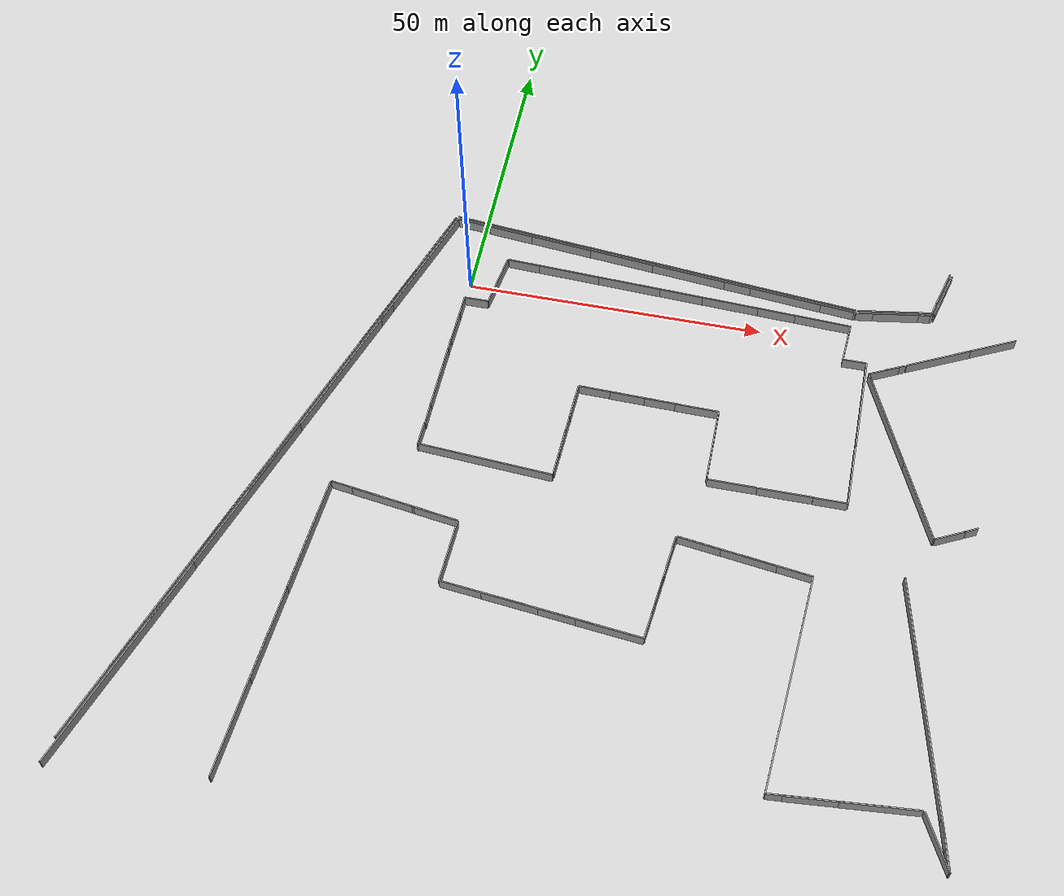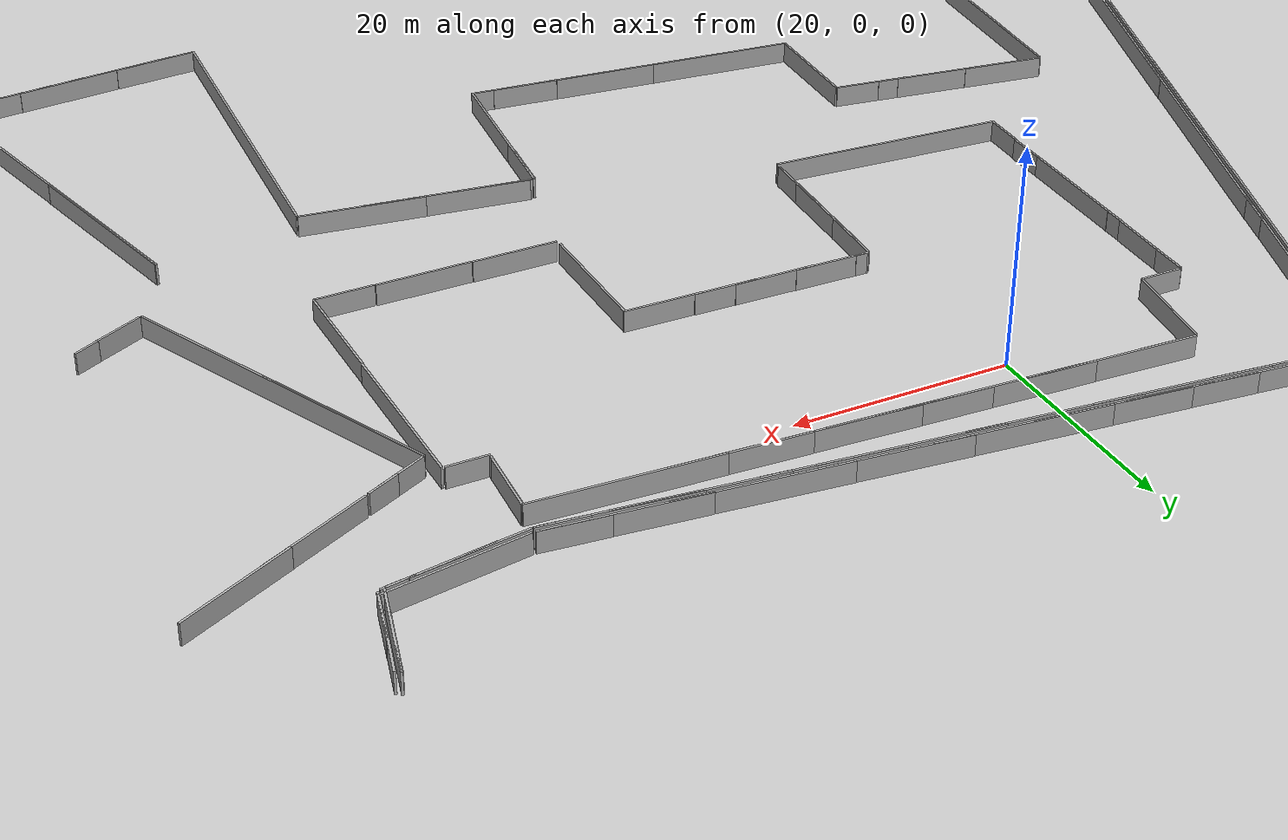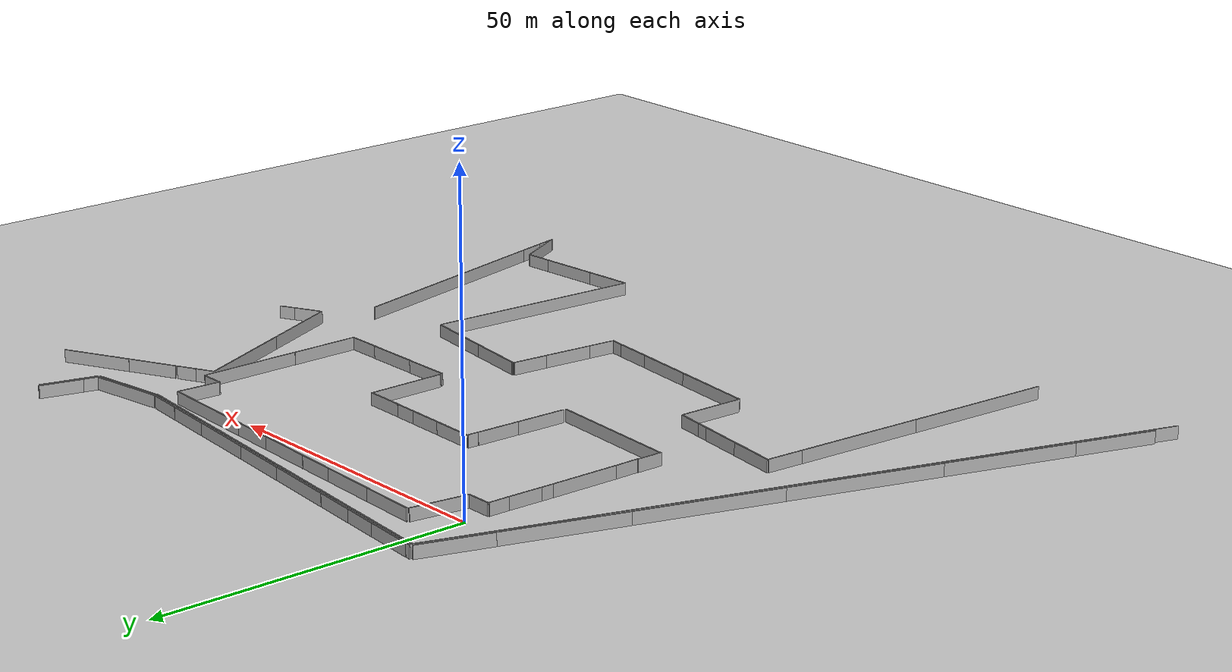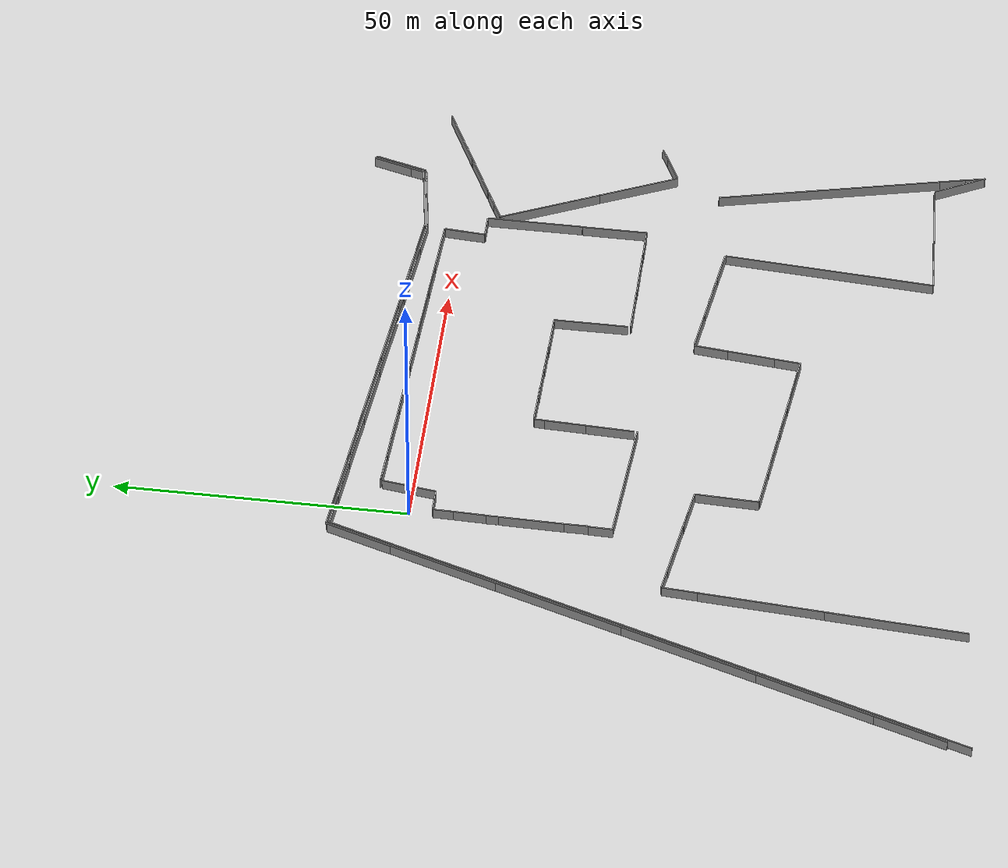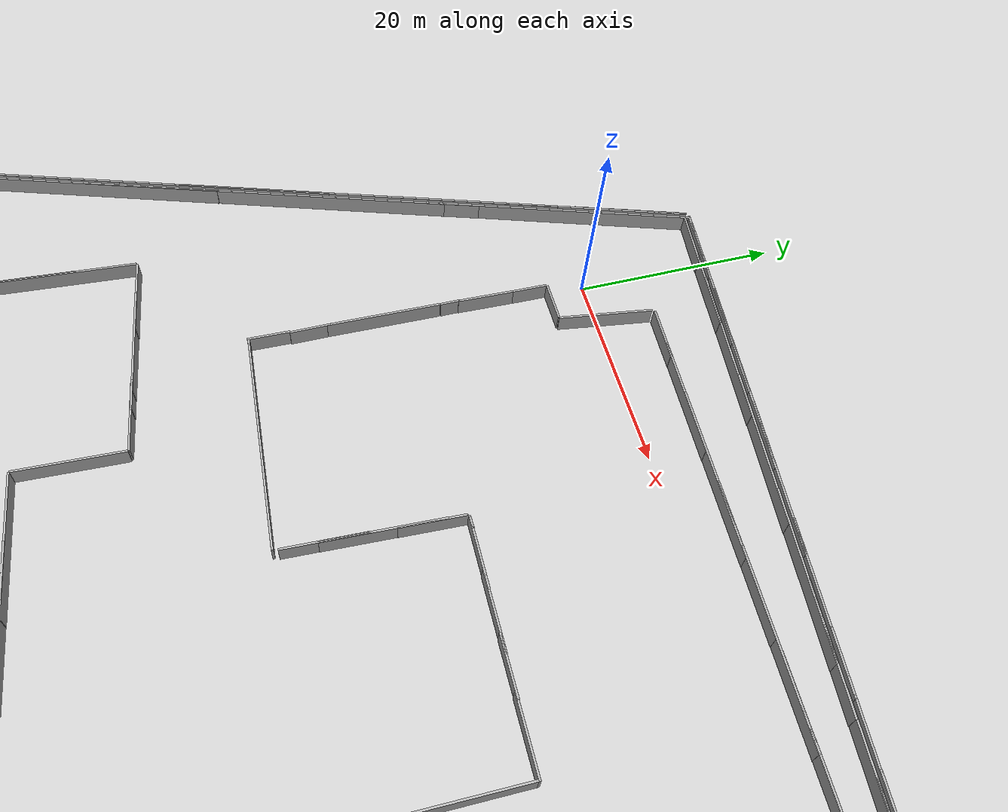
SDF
<sdf version="1.7">
 <world name="slam_world">
  <model name="ground_plane">
   <static>1</static>
   <link name="link">
    <collision name="collision">
     <geometry><plane><normal>0 0 1</normal><size>100 100</size></plane></geometry>
    </collision>
    <visual name="visual">
     <geometry><plane><normal>0 0 1</normal><size>100 100</size></plane></geometry>
     <material>
      <ambient>0.8 0.8 0.8 1</ambient>
      <diffuse>0.8 0.8 0.8 1</diffuse>
      <specular>0.8 0.8 0.8 1</specular>
     </material>
    </visual>
   </link>
  </model>
  <model name="wall_0">
   <static>1</static>
   <pose>-15.824 -19.025 1 0 -0 1.25765</pose>
   <link name="link">
    <collision name="collision"><geometry><box><size>40.4154 0.2 2</size></box></geometry></collision>
    <visual name="visual">
     <geometry><box><size>40.4154 0.2 2</size></box></geometry>
     <material><ambient>0.5 0.5 0.5 1</ambient><diffuse>0.7 0.7 0.7 1</diffuse></material>
    </visual>
   </link>
  </model>
  <model name="wall_1">
   <static>1</static>
   <pose>63.051 -64.125 1 0 -0 1.50137</pose>
   <link name="link">
    <collision name="collision"><geometry><box><size>36.0368 0.2 2</size></box></geometry></collision>
    <visual name="visual">
     <geometry><box><size>36.0368 0.2 2</size></box></geometry>
     <material><ambient>0.5 0.5 0.5 1</ambient><diffuse>0.7 0.7 0.7 1</diffuse></material>
    </visual>
   </link>
  </model>
  <model name="wall_6">
   <static>1</static>
   <pose>82.851 -64.275 1 0 0 -1.34478</pose>
   <link name="link">
    <collision name="collision"><geometry><box><size>42.8395 0.2 2</size></box></geometry></collision>
    <visual name="visual">
     <geometry><box><size>42.8395 0.2 2</size></box></geometry>
     <material><ambient>0.5 0.5 0.5 1</ambient><diffuse>0.7 0.7 0.7 1</diffuse></material>
    </visual>
   </link>
  </model>
  <model name="wall_8">
   <static>1</static>
   <pose>-26.474 -53.675 1 0 -0 1.25765</pose>
   <link name="link">
    <collision name="collision"><geometry><box><size>40.4154 0.2 2</size></box></geometry></collision>
    <visual name="visual">
     <geometry><box><size>40.4154 0.2 2</size></box></geometry>
     <material><ambient>0.5 0.5 0.5 1</ambient><diffuse>0.7 0.7 0.7 1</diffuse></material>
    </visual>
   </link>
  </model>
  <model name="wall_11">
   <static>1</static>
   <pose>-23.274 -42.125 1 0 -0 1.25765</pose>
   <link name="link">
    <collision name="collision"><geometry><box><size>40.4154 0.2 2</size></box></geometry></collision>
    <visual name="visual">
     <geometry><box><size>40.4154 0.2 2</size></box></geometry>
     <material><ambient>0.5 0.5 0.5 1</ambient><diffuse>0.7 0.7 0.7 1</diffuse></material>
    </visual>
   </link>
  </model>
  <model name="wall_13">
   <static>1</static>
   <pose>-18.774 -29.8 1 0 -0 1.25761</pose>
   <link name="link">
    <collision name="collision"><geometry><box><size>38.7868 0.2 2</size></box></geometry></collision>
    <visual name="visual">
     <geometry><box><size>38.7868 0.2 2</size></box></geometry>
     <material><ambient>0.5 0.5 0.5 1</ambient><diffuse>0.7 0.7 0.7 1</diffuse></material>
    </visual>
   </link>
  </model>
  <model name="wall_14">
   <static>1</static>
   <pose>68.151 -12.6 1 0 -0 1.5708</pose>
   <link name="link">
    <collision name="collision"><geometry><box><size>16.4 0.2 2</size></box></geometry></collision>
    <visual name="visual">
     <geometry><box><size>16.4 0.2 2</size></box></geometry>
     <material><ambient>0.5 0.5 0.5 1</ambient><diffuse>0.7 0.7 0.7 1</diffuse></material>
    </visual>
   </link>
  </model>
  <model name="wall_19">
   <static>1</static>
   <pose>-10.249 -1.775 1 0 -0 1.25668</pose>
   <link name="link">
    <collision name="collision"><geometry><box><size>31.0703 0.2 2</size></box></geometry></collision>
    <visual name="visual">
     <geometry><box><size>31.0703 0.2 2</size></box></geometry>
     <material><ambient>0.5 0.5 0.5 1</ambient><diffuse>0.7 0.7 0.7 1</diffuse></material>
    </visual>
   </link>
  </model>
  <model name="wall_20">
   <static>1</static>
   <pose>-34.974 -80 1 0 -0 1.25707</pose>
   <link name="link">
    <collision name="collision"><geometry><box><size>37.4268 0.2 2</size></box></geometry></collision>
    <visual name="visual">
     <geometry><box><size>37.4268 0.2 2</size></box></geometry>
     <material><ambient>0.5 0.5 0.5 1</ambient><diffuse>0.7 0.7 0.7 1</diffuse></material>
    </visual>
   </link>
  </model>
  <model name="wall_30">
   <static>1</static>
   <pose>75.276 -21.125 1 0 0 -1.15241</pose>
   <link name="link">
    <collision name="collision"><geometry><box><size>32.1205 0.2 2</size></box></geometry></collision>
    <visual name="visual">
     <geometry><box><size>32.1205 0.2 2</size></box></geometry>
     <material><ambient>0.5 0.5 0.5 1</ambient><diffuse>0.7 0.7 0.7 1</diffuse></material>
    </visual>
   </link>
  </model>
  <model name="wall_44">
   <static>1</static>
   <pose>-29.974 -62.9 1 0 -0 1.25761</pose>
   <link name="link">
    <collision name="collision"><geometry><box><size>38.7868 0.2 2</size></box></geometry></collision>
    <visual name="visual">
     <geometry><box><size>38.7868 0.2 2</size></box></geometry>
     <material><ambient>0.5 0.5 0.5 1</ambient><diffuse>0.7 0.7 0.7 1</diffuse></material>
    </visual>
   </link>
  </model>
  <model name="wall_58">
   <static>1</static>
   <pose>71.951 7.25 1 0 -0 0.153814</pose>
   <link name="link">
    <collision name="collision"><geometry><box><size>13.0541 0.2 2</size></box></geometry></collision>
    <visual name="visual">
     <geometry><box><size>13.0541 0.2 2</size></box></geometry>
     <material><ambient>0.5 0.5 0.5 1</ambient><diffuse>0.7 0.7 0.7 1</diffuse></material>
    </visual>
   </link>
  </model>
  <model name="wall_74">
   <static>1</static>
   <pose>45.601 -25.075 1 0 -0 1.5708</pose>
   <link name="link">
    <collision name="collision"><geometry><box><size>12.55 0.2 2</size></box></geometry></collision>
    <visual name="visual">
     <geometry><box><size>12.55 0.2 2</size></box></geometry>
     <material><ambient>0.5 0.5 0.5 1</ambient><diffuse>0.7 0.7 0.7 1</diffuse></material>
    </visual>
   </link>
  </model>
  <model name="wall_78">
   <static>1</static>
   <pose>58.126 -31.9 1 0 -0 0</pose>
   <link name="link">
    <collision name="collision"><geometry><box><size>8.85 0.2 2</size></box></geometry></collision>
    <visual name="visual">
     <geometry><box><size>8.85 0.2 2</size></box></geometry>
     <material><ambient>0.5 0.5 0.5 1</ambient><diffuse>0.7 0.7 0.7 1</diffuse></material>
    </visual>
   </link>
  </model>
  <model name="wall_79">
   <static>1</static>
   <pose>-8.849 1 1 0 -0 1.25768</pose>
   <link name="link">
    <collision name="collision"><geometry><box><size>25.647 0.2 2</size></box></geometry></collision>
    <visual name="visual">
     <geometry><box><size>25.647 0.2 2</size></box></geometry>
     <material><ambient>0.5 0.5 0.5 1</ambient><diffuse>0.7 0.7 0.7 1</diffuse></material>
    </visual>
   </link>
  </model>
  <model name="wall_89">
   <static>1</static>
   <pose>-14.049 -64.575 1 0 -0 1.49937</pose>
   <link name="link">
    <collision name="collision"><geometry><box><size>29.425 0.2 2</size></box></geometry></collision>
    <visual name="visual">
     <geometry><box><size>29.425 0.2 2</size></box></geometry>
     <material><ambient>0.5 0.5 0.5 1</ambient><diffuse>0.7 0.7 0.7 1</diffuse></material>
    </visual>
   </link>
  </model>
  <model name="wall_92">
   <static>1</static>
   <pose>49.676 -31.85 1 0 -0 0</pose>
   <link name="link">
    <collision name="collision"><geometry><box><size>7.95 0.2 2</size></box></geometry></collision>
    <visual name="visual">
     <geometry><box><size>7.95 0.2 2</size></box></geometry>
     <material><ambient>0.5 0.5 0.5 1</ambient><diffuse>0.7 0.7 0.7 1</diffuse></material>
    </visual>
   </link>
  </model>
  <model name="wall_98">
   <static>1</static>
   <pose>68.101 -26.4 1 0 -0 1.5708</pose>
   <link name="link">
    <collision name="collision"><geometry><box><size>11.1 0.2 2</size></box></geometry></collision>
    <visual name="visual">
     <geometry><box><size>11.1 0.2 2</size></box></geometry>
     <material><ambient>0.5 0.5 0.5 1</ambient><diffuse>0.7 0.7 0.7 1</diffuse></material>
    </visual>
   </link>
  </model>
  <model name="wall_99">
   <static>1</static>
   <pose>10.451 -35.025 1 0 0 -0.069395</pose>
   <link name="link">
    <collision name="collision"><geometry><box><size>22.3538 0.2 2</size></box></geometry></collision>
    <visual name="visual">
     <geometry><box><size>22.3538 0.2 2</size></box></geometry>
     <material><ambient>0.5 0.5 0.5 1</ambient><diffuse>0.7 0.7 0.7 1</diffuse></material>
    </visual>
   </link>
  </model>
  <model name="wall_108">
   <static>1</static>
   <pose>56.251 3.125 1 0 0 -0.050254</pose>
   <link name="link">
    <collision name="collision"><geometry><box><size>16.9214 0.2 2</size></box></geometry></collision>
    <visual name="visual">
     <geometry><box><size>16.9214 0.2 2</size></box></geometry>
     <material><ambient>0.5 0.5 0.5 1</ambient><diffuse>0.7 0.7 0.7 1</diffuse></material>
    </visual>
   </link>
  </model>
  <model name="wall_112">
   <static>1</static>
   <pose>8.601 -52.4 1 0 -0 1.53378</pose>
   <link name="link">
    <collision name="collision"><geometry><box><size>10.8074 0.2 2</size></box></geometry></collision>
    <visual name="visual">
     <geometry><box><size>10.8074 0.2 2</size></box></geometry>
     <material><ambient>0.5 0.5 0.5 1</ambient><diffuse>0.7 0.7 0.7 1</diffuse></material>
    </visual>
   </link>
  </model>
  <model name="wall_113">
   <static>1</static>
   <pose>25.226 10.2 1 0 0 -0.101882</pose>
   <link name="link">
    <collision name="collision"><geometry><box><size>15.7316 0.2 2</size></box></geometry></collision>
    <visual name="visual">
     <geometry><box><size>15.7316 0.2 2</size></box></geometry>
     <material><ambient>0.5 0.5 0.5 1</ambient><diffuse>0.7 0.7 0.7 1</diffuse></material>
    </visual>
   </link>
  </model>
  <model name="wall_120">
   <static>1</static>
   <pose>-0.470948 -20.7511 1 0 -0 1.55325</pose>
   <link name="link">
    <collision name="collision"><geometry><box><size>11.4018 0.2 2</size></box></geometry></collision>
    <visual name="visual">
     <geometry><box><size>11.4018 0.2 2</size></box></geometry>
     <material><ambient>0.5 0.5 0.5 1</ambient><diffuse>0.7 0.7 0.7 1</diffuse></material>
    </visual>
   </link>
  </model>
  <model name="wall_132">
   <static>1</static>
   <pose>39.951 3.9 1 0 0 -0.049683</pose>
   <link name="link">
    <collision name="collision"><geometry><box><size>18.1224 0.2 2</size></box></geometry></collision>
    <visual name="visual">
     <geometry><box><size>18.1224 0.2 2</size></box></geometry>
     <material><ambient>0.5 0.5 0.5 1</ambient><diffuse>0.7 0.7 0.7 1</diffuse></material>
    </visual>
   </link>
  </model>
  <model name="wall_140">
   <static>1</static>
   <pose>47.151 8.025 1 0 0 -0.101622</pose>
   <link name="link">
    <collision name="collision"><geometry><box><size>15.2788 0.2 2</size></box></geometry></collision>
    <visual name="visual">
     <geometry><box><size>15.2788 0.2 2</size></box></geometry>
     <material><ambient>0.5 0.5 0.5 1</ambient><diffuse>0.7 0.7 0.7 1</diffuse></material>
    </visual>
   </link>
  </model>
  <model name="wall_144">
   <static>1</static>
   <pose>34.526 8.775 1 0 0 -0.101814</pose>
   <link name="link">
    <collision name="collision"><geometry><box><size>16.2341 0.2 2</size></box></geometry></collision>
    <visual name="visual">
     <geometry><box><size>16.2341 0.2 2</size></box></geometry>
     <material><ambient>0.5 0.5 0.5 1</ambient><diffuse>0.7 0.7 0.7 1</diffuse></material>
    </visual>
   </link>
  </model>
  <model name="wall_147">
   <static>1</static>
   <pose>-15.399 -83.175 1 0 -0 1.50052</pose>
   <link name="link">
    <collision name="collision"><geometry><box><size>24.2098 0.2 2</size></box></geometry></collision>
    <visual name="visual">
     <geometry><box><size>24.2098 0.2 2</size></box></geometry>
     <material><ambient>0.5 0.5 0.5 1</ambient><diffuse>0.7 0.7 0.7 1</diffuse></material>
    </visual>
   </link>
  </model>
  <model name="wall_149">
   <static>1</static>
   <pose>37.576 8.975 1 0 0 -0.101814</pose>
   <link name="link">
    <collision name="collision"><geometry><box><size>16.2341 0.2 2</size></box></geometry></collision>
    <visual name="visual">
     <geometry><box><size>16.2341 0.2 2</size></box></geometry>
     <material><ambient>0.5 0.5 0.5 1</ambient><diffuse>0.7 0.7 0.7 1</diffuse></material>
    </visual>
   </link>
  </model>
  <model name="wall_150">
   <static>1</static>
   <pose>50.851 -44.175 1 0 0 -0.136958</pose>
   <link name="link">
    <collision name="collision"><geometry><box><size>15.7475 0.2 2</size></box></geometry></collision>
    <visual name="visual">
     <geometry><box><size>15.7475 0.2 2</size></box></geometry>
     <material><ambient>0.5 0.5 0.5 1</ambient><diffuse>0.7 0.7 0.7 1</diffuse></material>
    </visual>
   </link>
  </model>
  <model name="wall_159">
   <static>1</static>
   <pose>1.726 12.025 1 0 0 -0.101536</pose>
   <link name="link">
    <collision name="collision"><geometry><box><size>13.3186 0.2 2</size></box></geometry></collision>
    <visual name="visual">
     <geometry><box><size>13.3186 0.2 2</size></box></geometry>
     <material><ambient>0.5 0.5 0.5 1</ambient><diffuse>0.7 0.7 0.7 1</diffuse></material>
    </visual>
   </link>
  </model>
  <model name="wall_163">
   <static>1</static>
   <pose>41.926 -50.05 1 0 -0 1.46686</pose>
   <link name="link">
    <collision name="collision"><geometry><box><size>13.9754 0.2 2</size></box></geometry></collision>
    <visual name="visual">
     <geometry><box><size>13.9754 0.2 2</size></box></geometry>
     <material><ambient>0.5 0.5 0.5 1</ambient><diffuse>0.7 0.7 0.7 1</diffuse></material>
    </visual>
   </link>
  </model>
  <model name="wall_164">
   <static>1</static>
   <pose>58.501 -45.2 1 0 0 -0.137066</pose>
   <link name="link">
    <collision name="collision"><geometry><box><size>11.7098 0.2 2</size></box></geometry></collision>
    <visual name="visual">
     <geometry><box><size>11.7098 0.2 2</size></box></geometry>
     <material><ambient>0.5 0.5 0.5 1</ambient><diffuse>0.7 0.7 0.7 1</diffuse></material>
    </visual>
   </link>
  </model>
  <model name="wall_166">
   <static>1</static>
   <pose>41.076 8.125 1 0 0 -0.10252</pose>
   <link name="link">
    <collision name="collision"><geometry><box><size>12.2141 0.2 2</size></box></geometry></collision>
    <visual name="visual">
     <geometry><box><size>12.2141 0.2 2</size></box></geometry>
     <material><ambient>0.5 0.5 0.5 1</ambient><diffuse>0.7 0.7 0.7 1</diffuse></material>
    </visual>
   </link>
  </model>
  <model name="wall_167">
   <static>1</static>
   <pose>23.726 -59.525 1 0 0 -0.107456</pose>
   <link name="link">
    <collision name="collision"><geometry><box><size>17.2495 0.2 2</size></box></geometry></collision>
    <visual name="visual">
     <geometry><box><size>17.2495 0.2 2</size></box></geometry>
     <material><ambient>0.5 0.5 0.5 1</ambient><diffuse>0.7 0.7 0.7 1</diffuse></material>
    </visual>
   </link>
  </model>
  <model name="wall_168">
   <static>1</static>
   <pose>23.526 4.675 1 0 0 -0.049522</pose>
   <link name="link">
    <collision name="collision"><geometry><box><size>17.1711 0.2 2</size></box></geometry></collision>
    <visual name="visual">
     <geometry><box><size>17.1711 0.2 2</size></box></geometry>
     <material><ambient>0.5 0.5 0.5 1</ambient><diffuse>0.7 0.7 0.7 1</diffuse></material>
    </visual>
   </link>
  </model>
  <model name="wall_169">
   <static>1</static>
   <pose>13.426 5.15 1 0 0 -0.050115</pose>
   <link name="link">
    <collision name="collision"><geometry><box><size>15.9701 0.2 2</size></box></geometry></collision>
    <visual name="visual">
     <geometry><box><size>15.9701 0.2 2</size></box></geometry>
     <material><ambient>0.5 0.5 0.5 1</ambient><diffuse>0.7 0.7 0.7 1</diffuse></material>
    </visual>
   </link>
  </model>
  <model name="wall_198">
   <static>1</static>
   <pose>58.026 6.95 1 0 0 -0.101469</pose>
   <link name="link">
    <collision name="collision"><geometry><box><size>13.8211 0.2 2</size></box></geometry></collision>
    <visual name="visual">
     <geometry><box><size>13.8211 0.2 2</size></box></geometry>
     <material><ambient>0.5 0.5 0.5 1</ambient><diffuse>0.7 0.7 0.7 1</diffuse></material>
    </visual>
   </link>
  </model>
  <model name="wall_204">
   <static>1</static>
   <pose>22.226 -21.45 1 0 -0 1.53175</pose>
   <link name="link">
    <collision name="collision"><geometry><box><size>6.40488 0.2 2</size></box></geometry></collision>
    <visual name="visual">
     <geometry><box><size>6.40488 0.2 2</size></box></geometry>
     <material><ambient>0.5 0.5 0.5 1</ambient><diffuse>0.7 0.7 0.7 1</diffuse></material>
    </visual>
   </link>
  </model>
  <model name="wall_206">
   <static>1</static>
   <pose>3.301 12.375 1 0 0 -0.101622</pose>
   <link name="link">
    <collision name="collision"><geometry><box><size>15.2788 0.2 2</size></box></geometry></collision>
    <visual name="visual">
     <geometry><box><size>15.2788 0.2 2</size></box></geometry>
     <material><ambient>0.5 0.5 0.5 1</ambient><diffuse>0.7 0.7 0.7 1</diffuse></material>
    </visual>
   </link>
  </model>
  <model name="wall_212">
   <static>1</static>
   <pose>58.301 6.425 1 0 0 -0.101157</pose>
   <link name="link">
    <collision name="collision"><geometry><box><size>13.3683 0.2 2</size></box></geometry></collision>
    <visual name="visual">
     <geometry><box><size>13.3683 0.2 2</size></box></geometry>
     <material><ambient>0.5 0.5 0.5 1</ambient><diffuse>0.7 0.7 0.7 1</diffuse></material>
    </visual>
   </link>
  </model>
  <model name="wall_220">
   <static>1</static>
   <pose>71.951 -81.35 1 0 -0 0.084216</pose>
   <link name="link">
    <collision name="collision"><geometry><box><size>15.4548 0.2 2</size></box></geometry></collision>
    <visual name="visual">
     <geometry><box><size>15.4548 0.2 2</size></box></geometry>
     <material><ambient>0.5 0.5 0.5 1</ambient><diffuse>0.7 0.7 0.7 1</diffuse></material>
    </visual>
   </link>
  </model>
  <model name="wall_228">
   <static>1</static>
   <pose>22.026 -25.875 1 0 -0 1.53252</pose>
   <link name="link">
    <collision name="collision"><geometry><box><size>11.7586 0.2 2</size></box></geometry></collision>
    <visual name="visual">
     <geometry><box><size>11.7586 0.2 2</size></box></geometry>
     <material><ambient>0.5 0.5 0.5 1</ambient><diffuse>0.7 0.7 0.7 1</diffuse></material>
    </visual>
   </link>
  </model>
  <model name="wall_230">
   <static>1</static>
   <pose>41.326 -55.9 1 0 -0 1.46663</pose>
   <link name="link">
    <collision name="collision"><geometry><box><size>11.06 0.2 2</size></box></geometry></collision>
    <visual name="visual">
     <geometry><box><size>11.06 0.2 2</size></box></geometry>
     <material><ambient>0.5 0.5 0.5 1</ambient><diffuse>0.7 0.7 0.7 1</diffuse></material>
    </visual>
   </link>
  </model>
  <model name="wall_232">
   <static>1</static>
   <pose>22.176 10 1 0 0 -0.101882</pose>
   <link name="link">
    <collision name="collision"><geometry><box><size>15.7316 0.2 2</size></box></geometry></collision>
    <visual name="visual">
     <geometry><box><size>15.7316 0.2 2</size></box></geometry>
     <material><ambient>0.5 0.5 0.5 1</ambient><diffuse>0.7 0.7 0.7 1</diffuse></material>
    </visual>
   </link>
  </model>
  <model name="wall_233">
   <static>1</static>
   <pose>-13.249 -53.725 1 0 -0 1.49967</pose>
   <link name="link">
    <collision name="collision"><geometry><box><size>19.6998 0.2 2</size></box></geometry></collision>
    <visual name="visual">
     <geometry><box><size>19.6998 0.2 2</size></box></geometry>
     <material><ambient>0.5 0.5 0.5 1</ambient><diffuse>0.7 0.7 0.7 1</diffuse></material>
    </visual>
   </link>
  </model>
  <model name="wall_249">
   <static>1</static>
   <pose>-0.124 -5.775 1 0 -0 1.55631</pose>
   <link name="link">
    <collision name="collision"><geometry><box><size>3.45036 0.2 2</size></box></geometry></collision>
    <visual name="visual">
     <geometry><box><size>3.45036 0.2 2</size></box></geometry>
     <material><ambient>0.5 0.5 0.5 1</ambient><diffuse>0.7 0.7 0.7 1</diffuse></material>
    </visual>
   </link>
  </model>
  <model name="wall_250">
   <static>1</static>
   <pose>4.651 0.675 1 0 -0 1.43117</pose>
   <link name="link">
    <collision name="collision"><geometry><box><size>9.3409 0.2 2</size></box></geometry></collision>
    <visual name="visual">
     <geometry><box><size>9.3409 0.2 2</size></box></geometry>
     <material><ambient>0.5 0.5 0.5 1</ambient><diffuse>0.7 0.7 0.7 1</diffuse></material>
    </visual>
   </link>
  </model>
  <model name="wall_253">
   <static>1</static>
   <pose>-3.199 -45.175 1 0 0 -0.143739</pose>
   <link name="link">
    <collision name="collision"><geometry><box><size>11.5188 0.2 2</size></box></geometry></collision>
    <visual name="visual">
     <geometry><box><size>11.5188 0.2 2</size></box></geometry>
     <material><ambient>0.5 0.5 0.5 1</ambient><diffuse>0.7 0.7 0.7 1</diffuse></material>
    </visual>
   </link>
  </model>
  <model name="wall_256">
   <static>1</static>
   <pose>78.126 -80.85 1 0 -0 0.084902</pose>
   <link name="link">
    <collision name="collision"><geometry><box><size>11.7925 0.2 2</size></box></geometry></collision>
    <visual name="visual">
     <geometry><box><size>11.7925 0.2 2</size></box></geometry>
     <material><ambient>0.5 0.5 0.5 1</ambient><diffuse>0.7 0.7 0.7 1</diffuse></material>
    </visual>
   </link>
  </model>
  <model name="wall_258">
   <static>1</static>
   <pose>15.401 -58.6 1 0 0 -0.107498</pose>
   <link name="link">
    <collision name="collision"><geometry><box><size>13.9807 0.2 2</size></box></geometry></collision>
    <visual name="visual">
     <geometry><box><size>13.9807 0.2 2</size></box></geometry>
     <material><ambient>0.5 0.5 0.5 1</ambient><diffuse>0.7 0.7 0.7 1</diffuse></material>
    </visual>
   </link>
  </model>
  <model name="wall_263">
   <static>1</static>
   <pose>5.126 -46.425 1 0 0 -0.143828</pose>
   <link name="link">
    <collision name="collision"><geometry><box><size>7.32564 0.2 2</size></box></geometry></collision>
    <visual name="visual">
     <geometry><box><size>7.32564 0.2 2</size></box></geometry>
     <material><ambient>0.5 0.5 0.5 1</ambient><diffuse>0.7 0.7 0.7 1</diffuse></material>
    </visual>
   </link>
  </model>
  <model name="wall_273">
   <static>1</static>
   <pose>65.326 -31.95 1 0 -0 0</pose>
   <link name="link">
    <collision name="collision"><geometry><box><size>5.45 0.2 2</size></box></geometry></collision>
    <visual name="visual">
     <geometry><box><size>5.45 0.2 2</size></box></geometry>
     <material><ambient>0.5 0.5 0.5 1</ambient><diffuse>0.7 0.7 0.7 1</diffuse></material>
    </visual>
   </link>
  </model>
  <model name="wall_278">
   <static>1</static>
   <pose>86.326 -84.575 1 0 0 -1.09999</pose>
   <link name="link">
    <collision name="collision"><geometry><box><size>9.36937 0.2 2</size></box></geometry></collision>
    <visual name="visual">
     <geometry><box><size>9.36937 0.2 2</size></box></geometry>
     <material><ambient>0.5 0.5 0.5 1</ambient><diffuse>0.7 0.7 0.7 1</diffuse></material>
    </visual>
   </link>
  </model>
  <model name="wall_286">
   <static>1</static>
   <pose>78.951 12.325 1 0 -0 1.30953</pose>
   <link name="link">
    <collision name="collision"><geometry><box><size>9.67845 0.2 2</size></box></geometry></collision>
    <visual name="visual">
     <geometry><box><size>9.67845 0.2 2</size></box></geometry>
     <material><ambient>0.5 0.5 0.5 1</ambient><diffuse>0.7 0.7 0.7 1</diffuse></material>
    </visual>
   </link>
  </model>
  <model name="wall_293">
   <static>1</static>
   <pose>70.501 6.55 1 0 -0 0.152649</pose>
   <link name="link">
    <collision name="collision"><geometry><box><size>10.5224 0.2 2</size></box></geometry></collision>
    <visual name="visual">
     <geometry><box><size>10.5224 0.2 2</size></box></geometry>
     <material><ambient>0.5 0.5 0.5 1</ambient><diffuse>0.7 0.7 0.7 1</diffuse></material>
    </visual>
   </link>
  </model>
  <model name="wall_299">
   <static>1</static>
   <pose>64.476 -0.575 1 0 -0 1.50114</pose>
   <link name="link">
    <collision name="collision"><geometry><box><size>6.46568 0.2 2</size></box></geometry></collision>
    <visual name="visual">
     <geometry><box><size>6.46568 0.2 2</size></box></geometry>
     <material><ambient>0.5 0.5 0.5 1</ambient><diffuse>0.7 0.7 0.7 1</diffuse></material>
    </visual>
   </link>
  </model>
  <model name="wall_301">
   <static>1</static>
   <pose>21.801 -31.175 1 0 -0 1.53445</pose>
   <link name="link">
    <collision name="collision"><geometry><box><size>8.25545 0.2 2</size></box></geometry></collision>
    <visual name="visual">
     <geometry><box><size>8.25545 0.2 2</size></box></geometry>
     <material><ambient>0.5 0.5 0.5 1</ambient><diffuse>0.7 0.7 0.7 1</diffuse></material>
    </visual>
   </link>
  </model>
  <model name="wall_302">
   <static>1</static>
   <pose>79.426 12.3 1 0 -0 1.30984</pose>
   <link name="link">
    <collision name="collision"><geometry><box><size>9.10838 0.2 2</size></box></geometry></collision>
    <visual name="visual">
     <geometry><box><size>9.10838 0.2 2</size></box></geometry>
     <material><ambient>0.5 0.5 0.5 1</ambient><diffuse>0.7 0.7 0.7 1</diffuse></material>
    </visual>
   </link>
  </model>
  <model name="wall_319">
   <static>1</static>
   <pose>80.176 -52.525 1 0 0 -1.34481</pose>
   <link name="link">
    <collision name="collision"><geometry><box><size>18.5209 0.2 2</size></box></geometry></collision>
    <visual name="visual">
     <geometry><box><size>18.5209 0.2 2</size></box></geometry>
     <material><ambient>0.5 0.5 0.5 1</ambient><diffuse>0.7 0.7 0.7 1</diffuse></material>
    </visual>
   </link>
  </model>
  <model name="wall_320">
   <static>1</static>
   <pose>51.926 7.05 1 0 0 -0.102034</pose>
   <link name="link">
    <collision name="collision"><geometry><box><size>14.7266 0.2 2</size></box></geometry></collision>
    <visual name="visual">
     <geometry><box><size>14.7266 0.2 2</size></box></geometry>
     <material><ambient>0.5 0.5 0.5 1</ambient><diffuse>0.7 0.7 0.7 1</diffuse></material>
    </visual>
   </link>
  </model>
  <model name="wall_328">
   <static>1</static>
   <pose>-0.233735 -10.3084 1 0 -0 1.54425</pose>
   <link name="link">
    <collision name="collision"><geometry><box><size>5.65199 0.2 2</size></box></geometry></collision>
    <visual name="visual">
     <geometry><box><size>5.65199 0.2 2</size></box></geometry>
     <material><ambient>0.5 0.5 0.5 1</ambient><diffuse>0.7 0.7 0.7 1</diffuse></material>
    </visual>
   </link>
  </model>
  <model name="wall_331">
   <static>1</static>
   <pose>10.826 11.125 1 0 0 -0.101814</pose>
   <link name="link">
    <collision name="collision"><geometry><box><size>16.2341 0.2 2</size></box></geometry></collision>
    <visual name="visual">
     <geometry><box><size>16.2341 0.2 2</size></box></geometry>
     <material><ambient>0.5 0.5 0.5 1</ambient><diffuse>0.7 0.7 0.7 1</diffuse></material>
    </visual>
   </link>
  </model>
  <model name="wall_343">
   <static>1</static>
   <pose>86.976 2.6 1 0 -0 0.457719</pose>
   <link name="link">
    <collision name="collision"><geometry><box><size>11.3147 0.2 2</size></box></geometry></collision>
    <visual name="visual">
     <geometry><box><size>11.3147 0.2 2</size></box></geometry>
     <material><ambient>0.5 0.5 0.5 1</ambient><diffuse>0.7 0.7 0.7 1</diffuse></material>
    </visual>
   </link>
  </model>
  <model name="wall_347">
   <static>1</static>
   <pose>35.426 -60.825 1 0 0 -0.106571</pose>
   <link name="link">
    <collision name="collision"><geometry><box><size>10.8113 0.2 2</size></box></geometry></collision>
    <visual name="visual">
     <geometry><box><size>10.8113 0.2 2</size></box></geometry>
     <material><ambient>0.5 0.5 0.5 1</ambient><diffuse>0.7 0.7 0.7 1</diffuse></material>
    </visual>
   </link>
  </model>
  <model name="wall_350">
   <static>1</static>
   <pose>79.726 -1 1 0 -0 0.457719</pose>
   <link name="link">
    <collision name="collision"><geometry><box><size>11.3147 0.2 2</size></box></geometry></collision>
    <visual name="visual">
     <geometry><box><size>11.3147 0.2 2</size></box></geometry>
     <material><ambient>0.5 0.5 0.5 1</ambient><diffuse>0.7 0.7 0.7 1</diffuse></material>
    </visual>
   </link>
  </model>
  <model name="wall_354">
   <static>1</static>
   <pose>31.451 -18.375 1 0 0 -0.019478</pose>
   <link name="link">
    <collision name="collision"><geometry><box><size>7.70146 0.2 2</size></box></geometry></collision>
    <visual name="visual">
     <geometry><box><size>7.70146 0.2 2</size></box></geometry>
     <material><ambient>0.5 0.5 0.5 1</ambient><diffuse>0.7 0.7 0.7 1</diffuse></material>
    </visual>
   </link>
  </model>
  <model name="wall_362">
   <static>1</static>
   <pose>17.401 10.975 1 0 0 -0.10176</pose>
   <link name="link">
    <collision name="collision"><geometry><box><size>14.2738 0.2 2</size></box></geometry></collision>
    <visual name="visual">
     <geometry><box><size>14.2738 0.2 2</size></box></geometry>
     <material><ambient>0.5 0.5 0.5 1</ambient><diffuse>0.7 0.7 0.7 1</diffuse></material>
    </visual>
   </link>
  </model>
  <model name="wall_364">
   <static>1</static>
   <pose>65.851 -81.825 1 0 -0 0.081072</pose>
   <link name="link">
    <collision name="collision"><geometry><box><size>8.02636 0.2 2</size></box></geometry></collision>
    <visual name="visual">
     <geometry><box><size>8.02636 0.2 2</size></box></geometry>
     <material><ambient>0.5 0.5 0.5 1</ambient><diffuse>0.7 0.7 0.7 1</diffuse></material>
    </visual>
   </link>
  </model>
  <model name="wall_366">
   <static>1</static>
   <pose>36.276 -18.5 1 0 0 -0.01739</pose>
   <link name="link">
    <collision name="collision"><geometry><box><size>5.75087 0.2 2</size></box></geometry></collision>
    <visual name="visual">
     <geometry><box><size>5.75087 0.2 2</size></box></geometry>
     <material><ambient>0.5 0.5 0.5 1</ambient><diffuse>0.7 0.7 0.7 1</diffuse></material>
    </visual>
   </link>
  </model>
  <model name="wall_373">
   <static>1</static>
   <pose>-8.499 -44.375 1 0 0 -0.144554</pose>
   <link name="link">
    <collision name="collision"><geometry><box><size>7.98326 0.2 2</size></box></geometry></collision>
    <visual name="visual">
     <geometry><box><size>7.98326 0.2 2</size></box></geometry>
     <material><ambient>0.5 0.5 0.5 1</ambient><diffuse>0.7 0.7 0.7 1</diffuse></material>
    </visual>
   </link>
  </model>
  <model name="wall_374">
   <static>1</static>
   <pose>-0.716482 -32.268 1 0 -0 1.54727</pose>
   <link name="link">
    <collision name="collision"><geometry><box><size>4.25118 0.2 2</size></box></geometry></collision>
    <visual name="visual">
     <geometry><box><size>4.25118 0.2 2</size></box></geometry>
     <material><ambient>0.5 0.5 0.5 1</ambient><diffuse>0.7 0.7 0.7 1</diffuse></material>
    </visual>
   </link>
  </model>
  <model name="wall_390">
   <static>1</static>
   <pose>42.076 -18.65 1 0 0 -0.01739</pose>
   <link name="link">
    <collision name="collision"><geometry><box><size>7.27715 0.2 2</size></box></geometry></collision>
    <visual name="visual">
     <geometry><box><size>7.27715 0.2 2</size></box></geometry>
     <material><ambient>0.5 0.5 0.5 1</ambient><diffuse>0.7 0.7 0.7 1</diffuse></material>
    </visual>
   </link>
  </model>
  <model name="wall_395">
   <static>1</static>
   <pose>25.976 -18.225 1 0 0 -0.021273</pose>
   <link name="link">
    <collision name="collision"><geometry><box><size>7.0516 0.2 2</size></box></geometry></collision>
    <visual name="visual">
     <geometry><box><size>7.0516 0.2 2</size></box></geometry>
     <material><ambient>0.5 0.5 0.5 1</ambient><diffuse>0.7 0.7 0.7 1</diffuse></material>
    </visual>
   </link>
  </model>
  <model name="wall_413">
   <static>1</static>
   <pose>1.976 -3.95 1 0 -0 0</pose>
   <link name="link">
    <collision name="collision"><geometry><box><size>3.95 0.2 2</size></box></geometry></collision>
    <visual name="visual">
     <geometry><box><size>3.95 0.2 2</size></box></geometry>
     <material><ambient>0.5 0.5 0.5 1</ambient><diffuse>0.7 0.7 0.7 1</diffuse></material>
    </visual>
   </link>
  </model>
  <model name="wall_428">
   <static>1</static>
   <pose>71.151 -5.25 1 0 -0 0.455101</pose>
   <link name="link">
    <collision name="collision"><geometry><box><size>5.23259 0.2 2</size></box></geometry></collision>
    <visual name="visual">
     <geometry><box><size>5.23259 0.2 2</size></box></geometry>
     <material><ambient>0.5 0.5 0.5 1</ambient><diffuse>0.7 0.7 0.7 1</diffuse></material>
    </visual>
   </link>
  </model>
  <model name="wall_432">
   <static>1</static>
   <pose>66.0591 -4.35 1 0 -0 0</pose>
   <link name="link">
    <collision name="collision"><geometry><box><size>3.78141 0.2 2</size></box></geometry></collision>
    <visual name="visual">
     <geometry><box><size>3.78141 0.2 2</size></box></geometry>
     <material><ambient>0.5 0.5 0.5 1</ambient><diffuse>0.7 0.7 0.7 1</diffuse></material>
    </visual>
   </link>
  </model>
  <model name="wall_435">
   <static>1</static>
   <pose>-7.299 7.45 1 0 -0 1.25718</pose>
   <link name="link">
    <collision name="collision"><geometry><box><size>11.6692 0.2 2</size></box></geometry></collision>
    <visual name="visual">
     <geometry><box><size>11.6692 0.2 2</size></box></geometry>
     <material><ambient>0.5 0.5 0.5 1</ambient><diffuse>0.7 0.7 0.7 1</diffuse></material>
    </visual>
   </link>
  </model>
  <model name="wall_457">
   <static>1</static>
   <pose>87.826 -86.1 1 0 0 -1.35713</pose>
   <link name="link">
    <collision name="collision"><geometry><box><size>5.42333 0.2 2</size></box></geometry></collision>
    <visual name="visual">
     <geometry><box><size>5.42333 0.2 2</size></box></geometry>
     <material><ambient>0.5 0.5 0.5 1</ambient><diffuse>0.7 0.7 0.7 1</diffuse></material>
    </visual>
   </link>
  </model>
  <model name="wall_461">
   <static>1</static>
   <pose>84.226 -34.625 1 0 -0 0.459242</pose>
   <link name="link">
    <collision name="collision"><geometry><box><size>5.07592 0.2 2</size></box></geometry></collision>
    <visual name="visual">
     <geometry><box><size>5.07592 0.2 2</size></box></geometry>
     <material><ambient>0.5 0.5 0.5 1</ambient><diffuse>0.7 0.7 0.7 1</diffuse></material>
    </visual>
   </link>
  </model>
  <model name="wall_492">
   <static>1</static>
   <pose>-0.349 -14.0095 1 0 -0 1.5708</pose>
   <link name="link">
    <collision name="collision"><geometry><box><size>1.9 0.2 2</size></box></geometry></collision>
    <visual name="visual">
     <geometry><box><size>1.9 0.2 2</size></box></geometry>
     <material><ambient>0.5 0.5 0.5 1</ambient><diffuse>0.7 0.7 0.7 1</diffuse></material>
    </visual>
   </link>
  </model>
  <model name="wall_493">
   <static>1</static>
   <pose>10.326 11.675 1 0 0 -0.10252</pose>
   <link name="link">
    <collision name="collision"><geometry><box><size>12.2141 0.2 2</size></box></geometry></collision>
    <visual name="visual">
     <geometry><box><size>12.2141 0.2 2</size></box></geometry>
     <material><ambient>0.5 0.5 0.5 1</ambient><diffuse>0.7 0.7 0.7 1</diffuse></material>
    </visual>
   </link>
  </model>
  <model name="wall_495">
   <static>1</static>
   <pose>31.976 4.275 1 0 0 -0.050125</pose>
   <link name="link">
    <collision name="collision"><geometry><box><size>14.9688 0.2 2</size></box></geometry></collision>
    <visual name="visual">
     <geometry><box><size>14.9688 0.2 2</size></box></geometry>
     <material><ambient>0.5 0.5 0.5 1</ambient><diffuse>0.7 0.7 0.7 1</diffuse></material>
    </visual>
   </link>
  </model>
  <model name="wall_504">
   <static>1</static>
   <pose>76.376 7.425 1 0 -0 0.136403</pose>
   <link name="link">
    <collision name="collision"><geometry><box><size>2.57391 0.2 2</size></box></geometry></collision>
    <visual name="visual">
     <geometry><box><size>2.57391 0.2 2</size></box></geometry>
     <material><ambient>0.5 0.5 0.5 1</ambient><diffuse>0.7 0.7 0.7 1</diffuse></material>
    </visual>
   </link>
  </model>
  <model name="wall_506">
   <static>1</static>
   <pose>-1.174 12.8 1 0 0 -0.100291</pose>
   <link name="link">
    <collision name="collision"><geometry><box><size>7.99015 0.2 2</size></box></geometry></collision>
    <visual name="visual">
     <geometry><box><size>7.99015 0.2 2</size></box></geometry>
     <material><ambient>0.5 0.5 0.5 1</ambient><diffuse>0.7 0.7 0.7 1</diffuse></material>
    </visual>
   </link>
  </model>
  <model name="wall_520">
   <static>1</static>
   <pose>47.901 3.525 1 0 0 -0.050293</pose>
   <link name="link">
    <collision name="collision"><geometry><box><size>14.9189 0.2 2</size></box></geometry></collision>
    <visual name="visual">
     <geometry><box><size>14.9189 0.2 2</size></box></geometry>
     <material><ambient>0.5 0.5 0.5 1</ambient><diffuse>0.7 0.7 0.7 1</diffuse></material>
    </visual>
   </link>
  </model>
  <model name="wall_521">
   <static>1</static>
   <pose>-12.349 -9.9 1 0 -0 1.26375</pose>
   <link name="link">
    <collision name="collision"><geometry><box><size>4.30116 0.2 2</size></box></geometry></collision>
    <visual name="visual">
     <geometry><box><size>4.30116 0.2 2</size></box></geometry>
     <material><ambient>0.5 0.5 0.5 1</ambient><diffuse>0.7 0.7 0.7 1</diffuse></material>
    </visual>
   </link>
  </model>
  <model name="wall_531">
   <static>1</static>
   <pose>42.301 -46.025 1 0 -0 1.46683</pose>
   <link name="link">
    <collision name="collision"><geometry><box><size>5.78122 0.2 2</size></box></geometry></collision>
    <visual name="visual">
     <geometry><box><size>5.78122 0.2 2</size></box></geometry>
     <material><ambient>0.5 0.5 0.5 1</ambient><diffuse>0.7 0.7 0.7 1</diffuse></material>
    </visual>
   </link>
  </model>
  <model name="wall_536">
   <static>1</static>
   <pose>31.426 -60.375 1 0 0 -0.106858</pose>
   <link name="link">
    <collision name="collision"><geometry><box><size>14.5329 0.2 2</size></box></geometry></collision>
    <visual name="visual">
     <geometry><box><size>14.5329 0.2 2</size></box></geometry>
     <material><ambient>0.5 0.5 0.5 1</ambient><diffuse>0.7 0.7 0.7 1</diffuse></material>
    </visual>
   </link>
  </model>
  <model name="wall_537">
   <static>1</static>
   <pose>8.201 5.375 1 0 0 -0.046263</pose>
   <link name="link">
    <collision name="collision"><geometry><box><size>5.40578 0.2 2</size></box></geometry></collision>
    <visual name="visual">
     <geometry><box><size>5.40578 0.2 2</size></box></geometry>
     <material><ambient>0.5 0.5 0.5 1</ambient><diffuse>0.7 0.7 0.7 1</diffuse></material>
    </visual>
   </link>
  </model>
  <model name="wall_541">
   <static>1</static>
   <pose>64.426 -0.75 1 0 -0 1.5066</pose>
   <link name="link">
    <collision name="collision"><geometry><box><size>7.01445 0.2 2</size></box></geometry></collision>
    <visual name="visual">
     <geometry><box><size>7.01445 0.2 2</size></box></geometry>
     <material><ambient>0.5 0.5 0.5 1</ambient><diffuse>0.7 0.7 0.7 1</diffuse></material>
    </visual>
   </link>
  </model>
  <model name="wall_543">
   <static>1</static>
   <pose>-0.572017 -28.1556 1 0 0 -1.5708</pose>
   <link name="link">
    <collision name="collision"><geometry><box><size>4.05822 0.2 2</size></box></geometry></collision>
    <visual name="visual">
     <geometry><box><size>4.05822 0.2 2</size></box></geometry>
     <material><ambient>0.5 0.5 0.5 1</ambient><diffuse>0.7 0.7 0.7 1</diffuse></material>
    </visual>
   </link>
  </model>
  <model name="wall_552">
   <static>1</static>
   <pose>-12.949 -11.725 1 0 -0 1.26492</pose>
   <link name="link">
    <collision name="collision"><geometry><box><size>2.98873 0.2 2</size></box></geometry></collision>
    <visual name="visual">
     <geometry><box><size>2.98873 0.2 2</size></box></geometry>
     <material><ambient>0.5 0.5 0.5 1</ambient><diffuse>0.7 0.7 0.7 1</diffuse></material>
    </visual>
   </link>
  </model>
  <model name="wall_557">
   <static>1</static>
   <pose>62.251 6.55 1 0 0 -0.099669</pose>
   <link name="link">
    <collision name="collision"><geometry><box><size>6.02993 0.2 2</size></box></geometry></collision>
    <visual name="visual">
     <geometry><box><size>6.02993 0.2 2</size></box></geometry>
     <material><ambient>0.5 0.5 0.5 1</ambient><diffuse>0.7 0.7 0.7 1</diffuse></material>
    </visual>
   </link>
  </model>
  <model name="wall_558">
   <static>1</static>
   <pose>87.176 -83.2 1 0 0 -1.35336</pose>
   <link name="link">
    <collision name="collision"><geometry><box><size>4.40369 0.2 2</size></box></geometry></collision>
    <visual name="visual">
     <geometry><box><size>4.40369 0.2 2</size></box></geometry>
     <material><ambient>0.5 0.5 0.5 1</ambient><diffuse>0.7 0.7 0.7 1</diffuse></material>
    </visual>
   </link>
  </model>
  <model name="wall_561">
   <static>1</static>
   <pose>-35.474 -79.95 1 0 -0 1.25722</pose>
   <link name="link">
    <collision name="collision"><geometry><box><size>29.0149 0.2 2</size></box></geometry></collision>
    <visual name="visual">
     <geometry><box><size>29.0149 0.2 2</size></box></geometry>
     <material><ambient>0.5 0.5 0.5 1</ambient><diffuse>0.7 0.7 0.7 1</diffuse></material>
    </visual>
   </link>
  </model>
  <model name="wall_584">
   <static>1</static>
   <pose>87.276 -33.075 1 0 -0 0.472497</pose>
   <link name="link">
    <collision name="collision"><geometry><box><size>2.52686 0.2 2</size></box></geometry></collision>
    <visual name="visual">
     <geometry><box><size>2.52686 0.2 2</size></box></geometry>
     <material><ambient>0.5 0.5 0.5 1</ambient><diffuse>0.7 0.7 0.7 1</diffuse></material>
    </visual>
   </link>
  </model>
  <model name="wall_589">
   <static>1</static>
   <pose>46.301 -43.575 1 0 0 -0.136821</pose>
   <link name="link">
    <collision name="collision"><geometry><box><size>6.96509 0.2 2</size></box></geometry></collision>
    <visual name="visual">
     <geometry><box><size>6.96509 0.2 2</size></box></geometry>
     <material><ambient>0.5 0.5 0.5 1</ambient><diffuse>0.7 0.7 0.7 1</diffuse></material>
    </visual>
   </link>
  </model>
  <model name="wall_590">
   <static>1</static>
   <pose>79.276 13.675 1 0 -0 1.30972</pose>
   <link name="link">
    <collision name="collision"><geometry><box><size>6.77975 0.2 2</size></box></geometry></collision>
    <visual name="visual">
     <geometry><box><size>6.77975 0.2 2</size></box></geometry>
     <material><ambient>0.5 0.5 0.5 1</ambient><diffuse>0.7 0.7 0.7 1</diffuse></material>
    </visual>
   </link>
  </model>
  <model name="wall_592">
   <static>1</static>
   <pose>78.976 10.475 1 0 -0 1.31443</pose>
   <link name="link">
    <collision name="collision"><geometry><box><size>5.324 0.2 2</size></box></geometry></collision>
    <visual name="visual">
     <geometry><box><size>5.324 0.2 2</size></box></geometry>
     <material><ambient>0.5 0.5 0.5 1</ambient><diffuse>0.7 0.7 0.7 1</diffuse></material>
    </visual>
   </link>
  </model>
  <model name="wall_600">
   <static>1</static>
   <pose>-2.124 12.4 1 0 0 -0.103972</pose>
   <link name="link">
    <collision name="collision"><geometry><box><size>5.78122 0.2 2</size></box></geometry></collision>
    <visual name="visual">
     <geometry><box><size>5.78122 0.2 2</size></box></geometry>
     <material><ambient>0.5 0.5 0.5 1</ambient><diffuse>0.7 0.7 0.7 1</diffuse></material>
    </visual>
   </link>
  </model>
  <model name="wall_603">
   <static>1</static>
   <pose>23.151 -18.15 1 0 -0 0</pose>
   <link name="link">
    <collision name="collision"><geometry><box><size>1.1 0.2 2</size></box></geometry></collision>
    <visual name="visual">
     <geometry><box><size>1.1 0.2 2</size></box></geometry>
     <material><ambient>0.5 0.5 0.5 1</ambient><diffuse>0.7 0.7 0.7 1</diffuse></material>
    </visual>
   </link>
  </model>
  <model name="wall_608">
   <static>1</static>
   <pose>72.376 -14.675 1 0 0 -1.15115</pose>
   <link name="link">
    <collision name="collision"><geometry><box><size>17.794 0.2 2</size></box></geometry></collision>
    <visual name="visual">
     <geometry><box><size>17.794 0.2 2</size></box></geometry>
     <material><ambient>0.5 0.5 0.5 1</ambient><diffuse>0.7 0.7 0.7 1</diffuse></material>
    </visual>
   </link>
  </model>
  <model name="wall_615">
   <static>1</static>
   <pose>62.951 5.975 1 0 0 -0.099669</pose>
   <link name="link">
    <collision name="collision"><geometry><box><size>4.52244 0.2 2</size></box></geometry></collision>
    <visual name="visual">
     <geometry><box><size>4.52244 0.2 2</size></box></geometry>
     <material><ambient>0.5 0.5 0.5 1</ambient><diffuse>0.7 0.7 0.7 1</diffuse></material>
    </visual>
   </link>
  </model>
  <model name="wall_623">
   <static>1</static>
   <pose>72.951 -4.35 1 0 -0 0.44976</pose>
   <link name="link">
    <collision name="collision"><geometry><box><size>3.22025 0.2 2</size></box></geometry></collision>
    <visual name="visual">
     <geometry><box><size>3.22025 0.2 2</size></box></geometry>
     <material><ambient>0.5 0.5 0.5 1</ambient><diffuse>0.7 0.7 0.7 1</diffuse></material>
    </visual>
   </link>
  </model>
  <model name="wall_625">
   <static>1</static>
   <pose>2.851 -46.075 1 0 0 -0.135528</pose>
   <link name="link">
    <collision name="collision"><geometry><box><size>3.33054 0.2 2</size></box></geometry></collision>
    <visual name="visual">
     <geometry><box><size>3.33054 0.2 2</size></box></geometry>
     <material><ambient>0.5 0.5 0.5 1</ambient><diffuse>0.7 0.7 0.7 1</diffuse></material>
    </visual>
   </link>
  </model>
  <model name="wall_630">
   <static>1</static>
   <pose>73.101 6.925 1 0 -0 0.155305</pose>
   <link name="link">
    <collision name="collision"><geometry><box><size>10.0206 0.2 2</size></box></geometry></collision>
    <visual name="visual">
     <geometry><box><size>10.0206 0.2 2</size></box></geometry>
     <material><ambient>0.5 0.5 0.5 1</ambient><diffuse>0.7 0.7 0.7 1</diffuse></material>
    </visual>
   </link>
  </model>
 </world>
</sdf>
